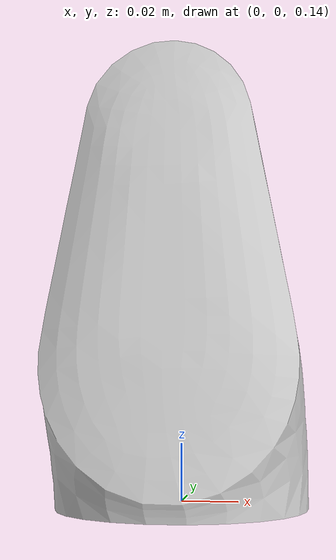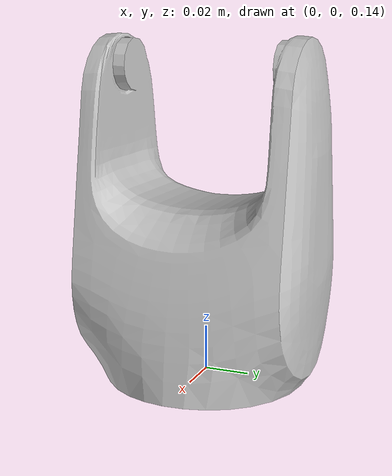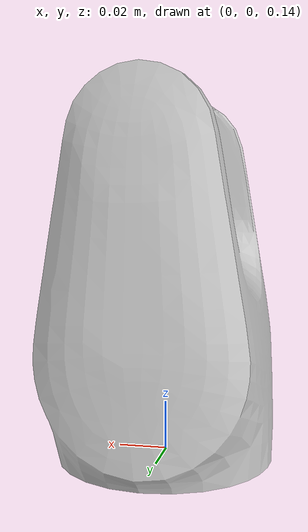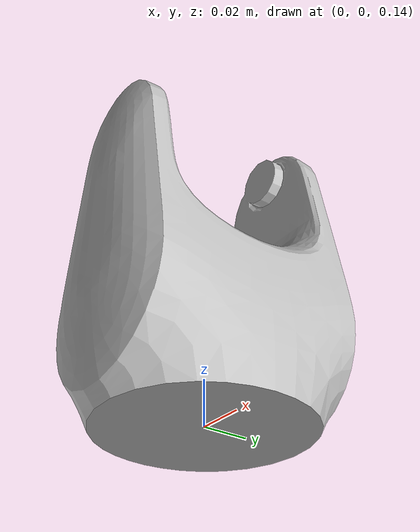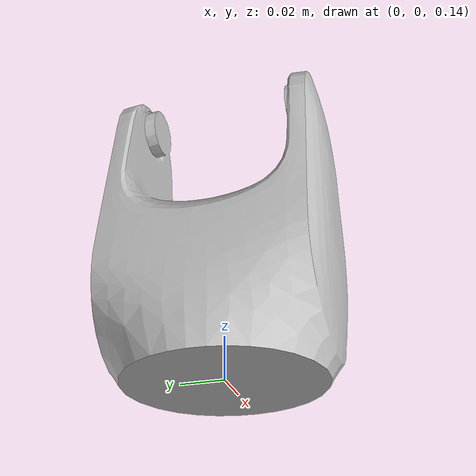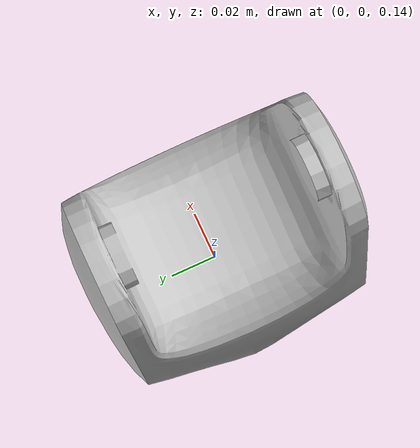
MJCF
<mujoco model="arm_r_link5">
  <default>
    <default class="visual">
      <geom group="2" type="mesh" contype="0" conaffinity="0"/>
    </default>
    <default class="collision">
      <geom group="3" type="mesh"/>
    </default>
  </default>
  <asset>
    <material name="material_arm_r_link5_0" specular="0.20000000000000004" shininess="1.0" rgba="0.76470588 0.76470588 0.76470588 1.0"/>
    <mesh file="arm_r_link5.obj"/>
  </asset>
  <worldbody>
    <body name="arm_r_link5">
      <geom material="material_arm_r_link5_0" mesh="arm_r_link5" class="visual"/>
      <geom mesh="arm_r_link5" class="collision"/>
    </body>
  </worldbody>
</mujoco>
